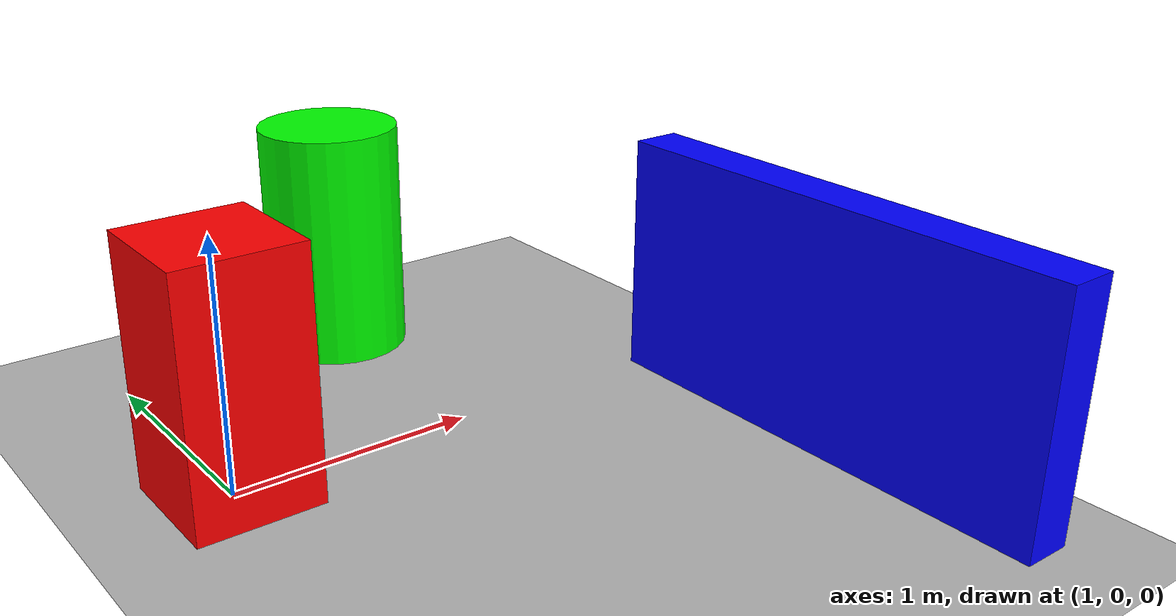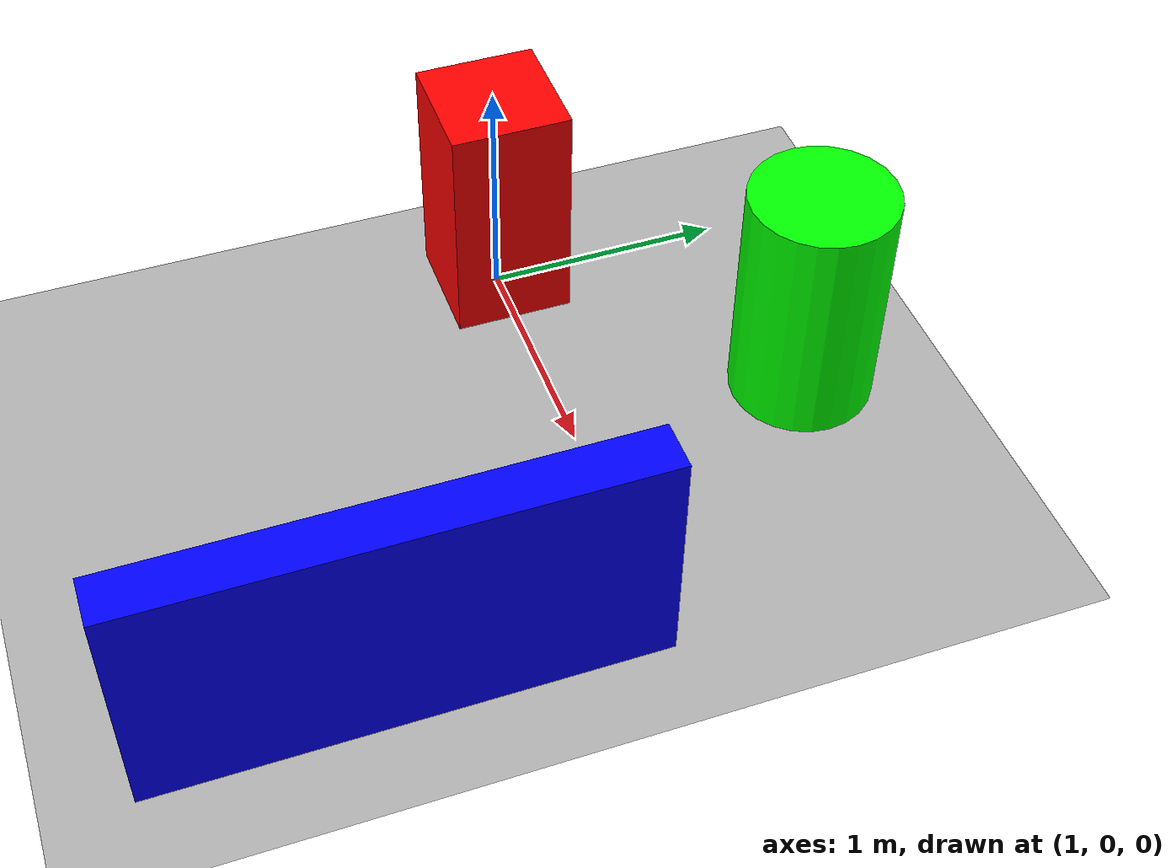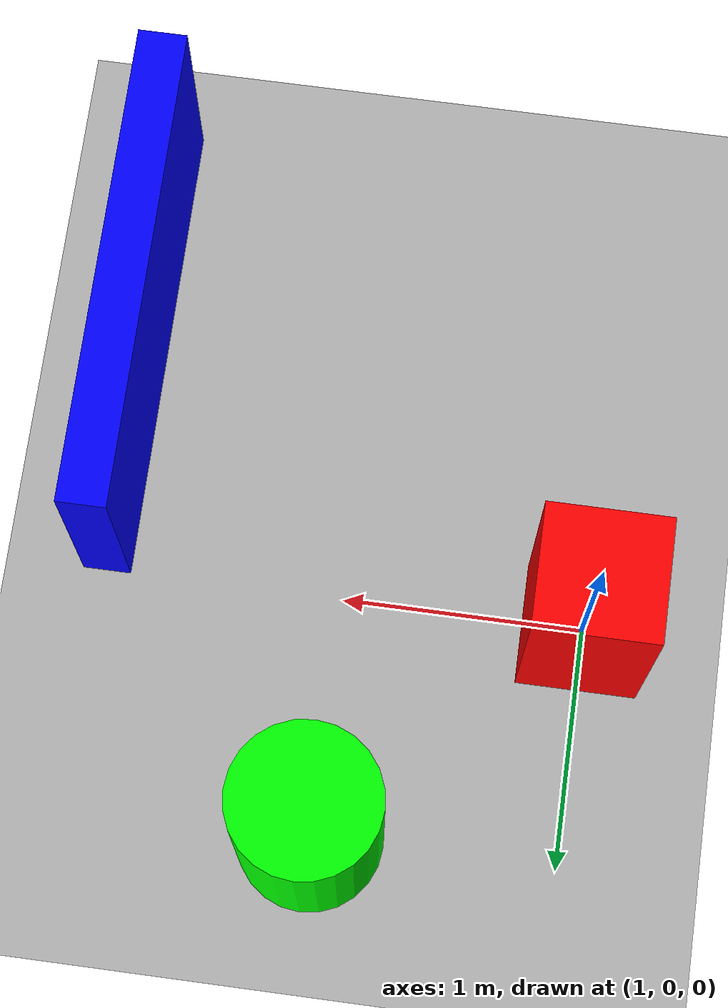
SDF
<?xml version="1.0" ?>
<sdf version="1.7">
  <world name="obstacle_world">
    <!-- Definir propriedades gerais do mundo -->
    <physics name="default_physics" type="ode">
      <max_step_size>0.001</max_step_size>
      <real_time_factor>1.0</real_time_factor>
    </physics>

    <!-- Iluminação -->
    <light name="sun" type="directional">
      <cast_shadows>true</cast_shadows>
      <pose>0 0 10 0 0 0</pose>
      <diffuse>0.8 0.8 0.8 1</diffuse>
      <specular>0.2 0.2 0.2 1</specular>
      <direction>-0.5 0.1 -0.9</direction>
    </light>

    <!-- Chão -->
    <model name="ground_plane">
      <static>true</static>
      <link name="link">
        <collision name="collision">
          <geometry>
            <plane>
              <normal>0 0 1</normal>
              <size>50 50</size>
            </plane>
          </geometry>
        </collision>
        <visual name="visual">
          <geometry>
            <plane>
              <normal>0 0 1</normal>
              <size>50 50</size>
            </plane>
          </geometry>
          <material>
            <diffuse>0.7 0.7 0.7 1</diffuse>
          </material>
        </visual>
      </link>
    </model>

    <!-- Obstáculo 1: Caixa -->
    <model name="obstacle_box_1">
      <static>true</static>
      <pose>1 0 0.5 0 0 0</pose>
      <link name="link">
        <collision name="collision">
          <geometry>
            <box>
              <size>0.5 0.5 1</size>
            </box>
          </geometry>
        </collision>
        <visual name="visual">
          <geometry>
            <box>
              <size>0.5 0.5 1</size>
            </box>
          </geometry>
          <material>
            <diffuse>1 0 0 1</diffuse>
          </material>
        </visual>
      </link>
    </model>

    <!-- Obstáculo 2: Cilindro -->
    <model name="obstacle_cylinder_1">
      <static>true</static>
      <pose>2 1 0.5 0 0 0</pose>
      <link name="link">
        <collision name="collision">
          <geometry>
            <cylinder>
              <radius>0.3</radius>
              <length>1</length>
            </cylinder>
          </geometry>
        </collision>
        <visual name="visual">
          <geometry>
            <cylinder>
              <radius>0.3</radius>
              <length>1</length>
            </cylinder>
          </geometry>
          <material>
            <diffuse>0 1 0 1</diffuse>
          </material>
        </visual>
      </link>
    </model>

    <!-- Obstáculo 3: Parede -->
    <model name="obstacle_wall_1">
      <static>true</static>
      <pose>3 -1 0.5 0 0 0</pose>
      <link name="link">
        <collision name="collision">
          <geometry>
            <box>
              <size>0.2 2 1</size>
            </box>
          </geometry>
        </collision>
        <visual name="visual">
          <geometry>
            <box>
              <size>0.2 2 1</size>
            </box>
          </geometry>
          <material>
            <diffuse>0 0 1 1</diffuse>
          </material>
        </visual>
      </link>
    </model>
  </world>
</sdf>
